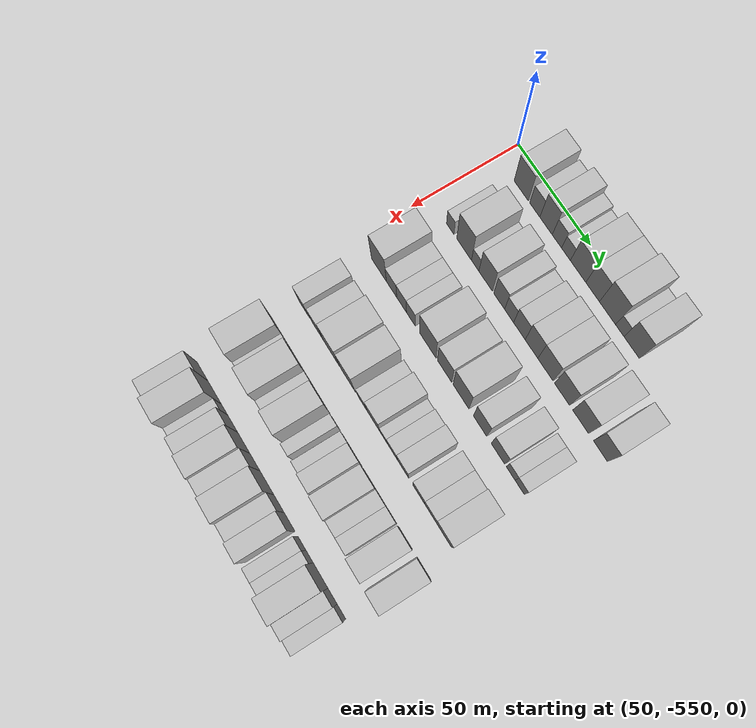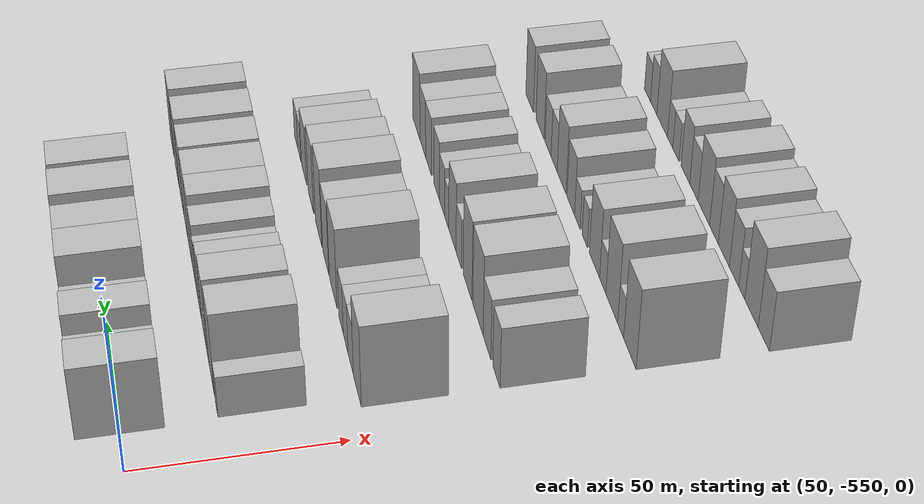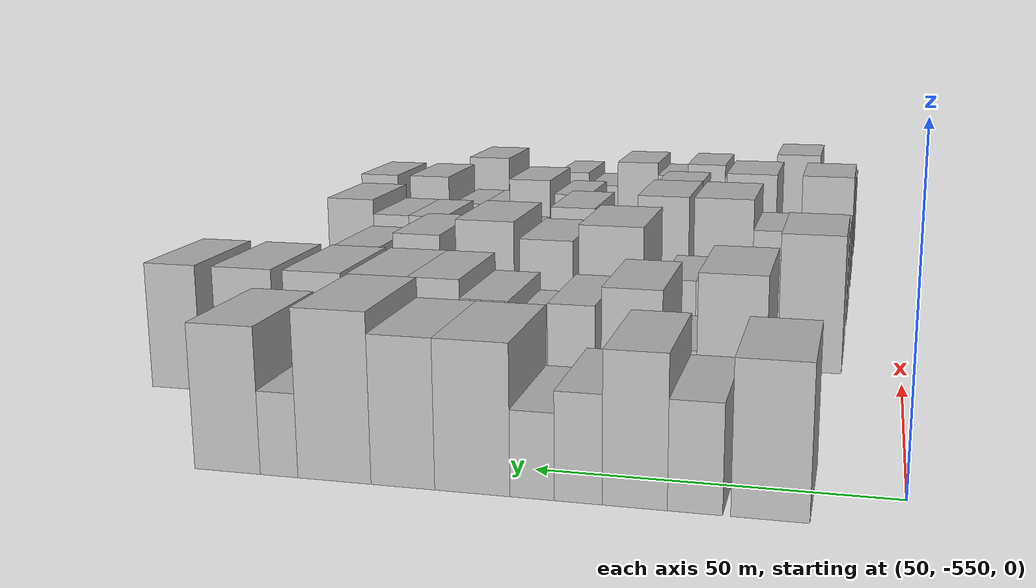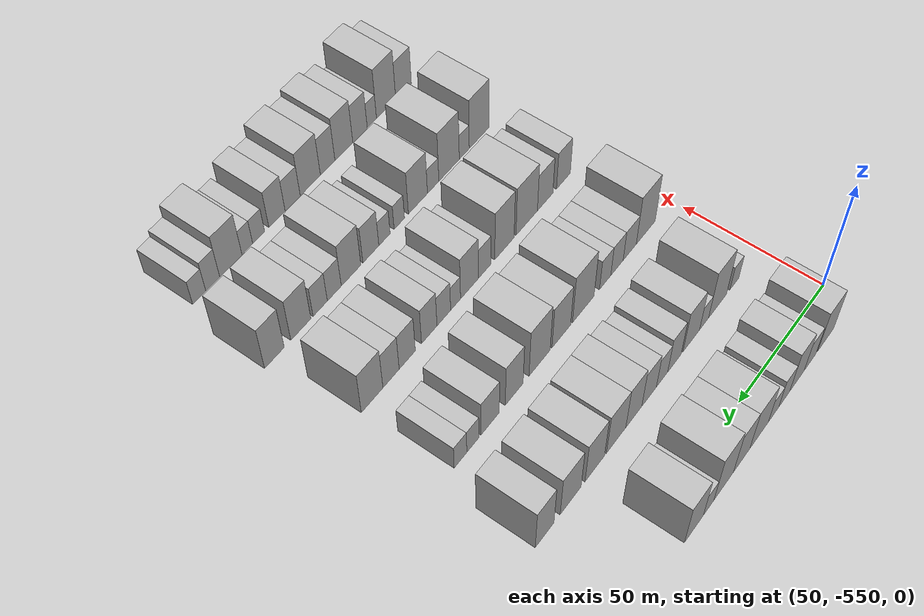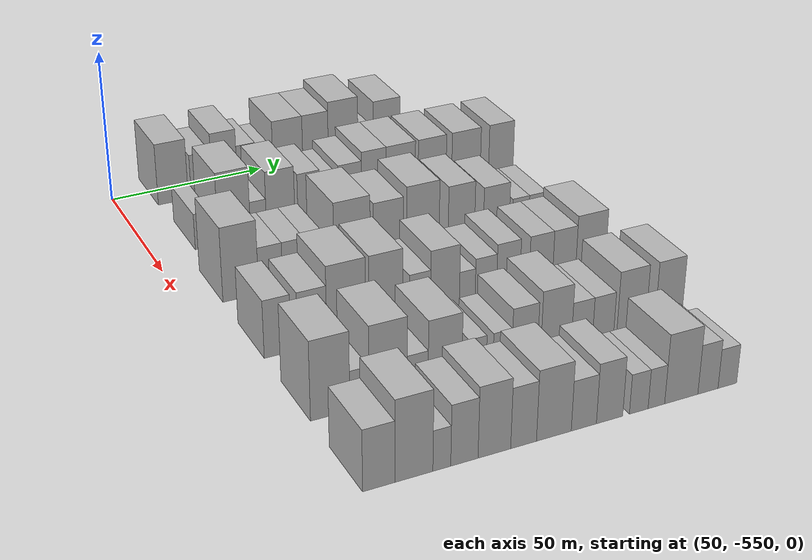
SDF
<sdf version="1.6">
 <world name="default">
  <model name="building_1">
   <static>1</static>
   <pose>50.0000 -533.0383 0 0.000000 0.000000 0.000000</pose>
   <link name="link">
    <pose>0 0 10.50 0 0 0</pose>
    <collision name="collision"><geometry><box><size>20.0000 9.9235 21.0000</size></box></geometry></collision>
    <visual name="visual">
     <cast_shadows>0</cast_shadows>
     <geometry><box><size>20.0000 9.9235 21.0000</size></box></geometry>
     <material>
      <script>
       <uri>model://HANNAS_wall/materials/scripts</uri>
       <uri>model://HANNAS_wall/materials/textures</uri>
       <name>vrc/HANNAS_wall</name>
      </script>
     </material>
    </visual>
   </link>
  </model>
  <model name="building_2">
   <static>1</static>
   <pose>50.0000 -523.5318 0 0.000000 0.000000 0.000000</pose>
   <link name="link">
    <pose>0 0 7.50 0 0 0</pose>
    <collision name="collision"><geometry><box><size>20.0000 7.0894 15.0000</size></box></geometry></collision>
    <visual name="visual">
     <cast_shadows>0</cast_shadows>
     <geometry><box><size>20.0000 7.0894 15.0000</size></box></geometry>
     <material>
      <script>
       <uri>model://HANNAS_wall/materials/scripts</uri>
       <uri>model://HANNAS_wall/materials/textures</uri>
       <name>vrc/HANNAS_wall</name>
      </script>
     </material>
    </visual>
   </link>
  </model>
  <model name="building_3">
   <static>1</static>
   <pose>50.0000 -515.7265 0 0.000000 0.000000 0.000000</pose>
   <link name="link">
    <pose>0 0 10.50 0 0 0</pose>
    <collision name="collision"><geometry><box><size>20.0000 8.5213 21.0000</size></box></geometry></collision>
    <visual name="visual">
     <cast_shadows>0</cast_shadows>
     <geometry><box><size>20.0000 8.5213 21.0000</size></box></geometry>
     <material>
      <script>
       <uri>model://HANNAS_wall/materials/scripts</uri>
       <uri>model://HANNAS_wall/materials/textures</uri>
       <name>vrc/HANNAS_wall</name>
      </script>
     </material>
    </visual>
   </link>
  </model>
  <model name="building_4">
   <static>1</static>
   <pose>50.0000 -508.2796 0 0.000000 0.000000 0.000000</pose>
   <link name="link">
    <pose>0 0 7.50 0 0 0</pose>
    <collision name="collision"><geometry><box><size>20.0000 6.3724 15.0000</size></box></geometry></collision>
    <visual name="visual">
     <cast_shadows>0</cast_shadows>
     <geometry><box><size>20.0000 6.3724 15.0000</size></box></geometry>
     <material>
      <script>
       <uri>model://HANNAS_wall/materials/scripts</uri>
       <uri>model://HANNAS_wall/materials/textures</uri>
       <name>vrc/HANNAS_wall</name>
      </script>
     </material>
    </visual>
   </link>
  </model>
  <model name="building_5">
   <static>1</static>
   <pose>50.0000 -502.1047 0 0.000000 0.000000 0.000000</pose>
   <link name="link">
    <pose>0 0 6.00 0 0 0</pose>
    <collision name="collision"><geometry><box><size>20.0000 5.9775 12.0000</size></box></geometry></collision>
    <visual name="visual">
     <cast_shadows>0</cast_shadows>
     <geometry><box><size>20.0000 5.9775 12.0000</size></box></geometry>
     <material>
      <script>
       <uri>model://HANNAS_wall/materials/scripts</uri>
       <uri>model://HANNAS_wall/materials/textures</uri>
       <name>vrc/HANNAS_wall</name>
      </script>
     </material>
    </visual>
   </link>
  </model>
  <model name="building_6">
   <static>1</static>
   <pose>50.0000 -493.9333 0 0.000000 0.000000 0.000000</pose>
   <link name="link">
    <pose>0 0 10.50 0 0 0</pose>
    <collision name="collision"><geometry><box><size>20.0000 10.3654 21.0000</size></box></geometry></collision>
    <visual name="visual">
     <cast_shadows>0</cast_shadows>
     <geometry><box><size>20.0000 10.3654 21.0000</size></box></geometry>
     <material>
      <script>
       <uri>model://HANNAS_wall/materials/scripts</uri>
       <uri>model://HANNAS_wall/materials/textures</uri>
       <name>vrc/HANNAS_wall</name>
      </script>
     </material>
    </visual>
   </link>
  </model>
  <model name="building_7">
   <static>1</static>
   <pose>50.0000 -484.2510 0 0.000000 0.000000 0.000000</pose>
   <link name="link">
    <pose>0 0 10.50 0 0 0</pose>
    <collision name="collision"><geometry><box><size>20.0000 8.9993 21.0000</size></box></geometry></collision>
    <visual name="visual">
     <cast_shadows>0</cast_shadows>
     <geometry><box><size>20.0000 8.9993 21.0000</size></box></geometry>
     <material>
      <script>
       <uri>model://HANNAS_wall/materials/scripts</uri>
       <uri>model://HANNAS_wall/materials/textures</uri>
       <name>vrc/HANNAS_wall</name>
      </script>
     </material>
    </visual>
   </link>
  </model>
  <model name="building_8">
   <static>1</static>
   <pose>50.0000 -474.4659 0 0.000000 0.000000 0.000000</pose>
   <link name="link">
    <pose>0 0 12.00 0 0 0</pose>
    <collision name="collision"><geometry><box><size>20.0000 10.5708 24.0000</size></box></geometry></collision>
    <visual name="visual">
     <cast_shadows>0</cast_shadows>
     <geometry><box><size>20.0000 10.5708 24.0000</size></box></geometry>
     <material>
      <script>
       <uri>model://HANNAS_wall/materials/scripts</uri>
       <uri>model://HANNAS_wall/materials/textures</uri>
       <name>vrc/HANNAS_wall</name>
      </script>
     </material>
    </visual>
   </link>
  </model>
  <model name="building_9">
   <static>1</static>
   <pose>50.0000 -466.4104 0 0.000000 0.000000 0.000000</pose>
   <link name="link">
    <pose>0 0 6.00 0 0 0</pose>
    <collision name="collision"><geometry><box><size>20.0000 5.5403 12.0000</size></box></geometry></collision>
    <visual name="visual">
     <cast_shadows>0</cast_shadows>
     <geometry><box><size>20.0000 5.5403 12.0000</size></box></geometry>
     <material>
      <script>
       <uri>model://HANNAS_wall/materials/scripts</uri>
       <uri>model://HANNAS_wall/materials/textures</uri>
       <name>vrc/HANNAS_wall</name>
      </script>
     </material>
    </visual>
   </link>
  </model>
  <model name="building_10">
   <static>1</static>
   <pose>50.0000 -458.7270 0 0.000000 0.000000 0.000000</pose>
   <link name="link">
    <pose>0 0 10.50 0 0 0</pose>
    <collision name="collision"><geometry><box><size>20.0000 9.8265 21.0000</size></box></geometry></collision>
    <visual name="visual">
     <cast_shadows>0</cast_shadows>
     <geometry><box><size>20.0000 9.8265 21.0000</size></box></geometry>
     <material>
      <script>
       <uri>model://HANNAS_wall/materials/scripts</uri>
       <uri>model://HANNAS_wall/materials/textures</uri>
       <name>vrc/HANNAS_wall</name>
      </script>
     </material>
    </visual>
   </link>
  </model>
  <model name="building_116">
   <static>1</static>
   <pose>82.0000 -534.3353 0 0.000000 0.000000 0.000000</pose>
   <link name="link">
    <pose>0 0 6.00 0 0 0</pose>
    <collision name="collision"><geometry><box><size>20.0000 5.3293 12.0000</size></box></geometry></collision>
    <visual name="visual">
     <cast_shadows>0</cast_shadows>
     <geometry><box><size>20.0000 5.3293 12.0000</size></box></geometry>
     <material>
      <script>
       <uri>model://HANNAS_wall/materials/scripts</uri>
       <uri>model://HANNAS_wall/materials/textures</uri>
       <name>vrc/HANNAS_wall</name>
      </script>
     </material>
    </visual>
   </link>
  </model>
  <model name="building_117">
   <static>1</static>
   <pose>82.0000 -524.4683 0 0.000000 0.000000 0.000000</pose>
   <link name="link">
    <pose>0 0 12.00 0 0 0</pose>
    <collision name="collision"><geometry><box><size>20.0000 10.4048 24.0000</size></box></geometry></collision>
    <visual name="visual">
     <cast_shadows>0</cast_shadows>
     <geometry><box><size>20.0000 10.4048 24.0000</size></box></geometry>
     <material>
      <script>
       <uri>model://HANNAS_wall/materials/scripts</uri>
       <uri>model://HANNAS_wall/materials/textures</uri>
       <name>vrc/HANNAS_wall</name>
      </script>
     </material>
    </visual>
   </link>
  </model>
  <model name="building_118">
   <static>1</static>
   <pose>82.0000 -516.6596 0 0.000000 0.000000 0.000000</pose>
   <link name="link">
    <pose>0 0 6.00 0 0 0</pose>
    <collision name="collision"><geometry><box><size>20.0000 5.2125 12.0000</size></box></geometry></collision>
    <visual name="visual">
     <cast_shadows>0</cast_shadows>
     <geometry><box><size>20.0000 5.2125 12.0000</size></box></geometry>
     <material>
      <script>
       <uri>model://HANNAS_wall/materials/scripts</uri>
       <uri>model://HANNAS_wall/materials/textures</uri>
       <name>vrc/HANNAS_wall</name>
      </script>
     </material>
    </visual>
   </link>
  </model>
  <model name="building_119">
   <static>1</static>
   <pose>82.0000 -509.3737 0 0.000000 0.000000 0.000000</pose>
   <link name="link">
    <pose>0 0 10.50 0 0 0</pose>
    <collision name="collision"><geometry><box><size>20.0000 9.3593 21.0000</size></box></geometry></collision>
    <visual name="visual">
     <cast_shadows>0</cast_shadows>
     <geometry><box><size>20.0000 9.3593 21.0000</size></box></geometry>
     <material>
      <script>
       <uri>model://HANNAS_wall/materials/scripts</uri>
       <uri>model://HANNAS_wall/materials/textures</uri>
       <name>vrc/HANNAS_wall</name>
      </script>
     </material>
    </visual>
   </link>
  </model>
  <model name="building_120">
   <static>1</static>
   <pose>82.0000 -499.9854 0 0.000000 0.000000 0.000000</pose>
   <link name="link">
    <pose>0 0 9.00 0 0 0</pose>
    <collision name="collision"><geometry><box><size>20.0000 7.4174 18.0000</size></box></geometry></collision>
    <visual name="visual">
     <cast_shadows>0</cast_shadows>
     <geometry><box><size>20.0000 7.4174 18.0000</size></box></geometry>
     <material>
      <script>
       <uri>model://HANNAS_wall/materials/scripts</uri>
       <uri>model://HANNAS_wall/materials/textures</uri>
       <name>vrc/HANNAS_wall</name>
      </script>
     </material>
    </visual>
   </link>
  </model>
  <model name="building_121">
   <static>1</static>
   <pose>82.0000 -493.2014 0 0.000000 0.000000 0.000000</pose>
   <link name="link">
    <pose>0 0 7.50 0 0 0</pose>
    <collision name="collision"><geometry><box><size>20.0000 6.1505 15.0000</size></box></geometry></collision>
    <visual name="visual">
     <cast_shadows>0</cast_shadows>
     <geometry><box><size>20.0000 6.1505 15.0000</size></box></geometry>
     <material>
      <script>
       <uri>model://HANNAS_wall/materials/scripts</uri>
       <uri>model://HANNAS_wall/materials/textures</uri>
       <name>vrc/HANNAS_wall</name>
      </script>
     </material>
    </visual>
   </link>
  </model>
  <model name="building_122">
   <static>1</static>
   <pose>82.0000 -486.2137 0 0.000000 0.000000 0.000000</pose>
   <link name="link">
    <pose>0 0 9.00 0 0 0</pose>
    <collision name="collision"><geometry><box><size>20.0000 7.8249 18.0000</size></box></geometry></collision>
    <visual name="visual">
     <cast_shadows>0</cast_shadows>
     <geometry><box><size>20.0000 7.8249 18.0000</size></box></geometry>
     <material>
      <script>
       <uri>model://HANNAS_wall/materials/scripts</uri>
       <uri>model://HANNAS_wall/materials/textures</uri>
       <name>vrc/HANNAS_wall</name>
      </script>
     </material>
    </visual>
   </link>
  </model>
  <model name="building_123">
   <static>1</static>
   <pose>82.0000 -478.0771 0 0.000000 0.000000 0.000000</pose>
   <link name="link">
    <pose>0 0 10.50 0 0 0</pose>
    <collision name="collision"><geometry><box><size>20.0000 8.4484 21.0000</size></box></geometry></collision>
    <visual name="visual">
     <cast_shadows>0</cast_shadows>
     <geometry><box><size>20.0000 8.4484 21.0000</size></box></geometry>
     <material>
      <script>
       <uri>model://HANNAS_wall/materials/scripts</uri>
       <uri>model://HANNAS_wall/materials/textures</uri>
       <name>vrc/HANNAS_wall</name>
      </script>
     </material>
    </visual>
   </link>
  </model>
  <model name="building_124">
   <static>1</static>
   <pose>82.0000 -468.8421 0 0.000000 0.000000 0.000000</pose>
   <link name="link">
    <pose>0 0 10.50 0 0 0</pose>
    <collision name="collision"><geometry><box><size>20.0000 10.0214 21.0000</size></box></geometry></collision>
    <visual name="visual">
     <cast_shadows>0</cast_shadows>
     <geometry><box><size>20.0000 10.0214 21.0000</size></box></geometry>
     <material>
      <script>
       <uri>model://HANNAS_wall/materials/scripts</uri>
       <uri>model://HANNAS_wall/materials/textures</uri>
       <name>vrc/HANNAS_wall</name>
      </script>
     </material>
    </visual>
   </link>
  </model>
  <model name="building_125">
   <static>1</static>
   <pose>82.0000 -457.9148 0 0.000000 0.000000 0.000000</pose>
   <link name="link">
    <pose>0 0 10.50 0 0 0</pose>
    <collision name="collision"><geometry><box><size>20.0000 9.8332 21.0000</size></box></geometry></collision>
    <visual name="visual">
     <cast_shadows>0</cast_shadows>
     <geometry><box><size>20.0000 9.8332 21.0000</size></box></geometry>
     <material>
      <script>
       <uri>model://HANNAS_wall/materials/scripts</uri>
       <uri>model://HANNAS_wall/materials/textures</uri>
       <name>vrc/HANNAS_wall</name>
      </script>
     </material>
    </visual>
   </link>
  </model>
  <model name="building_126">
   <static>1</static>
   <pose>82.0000 -445.8728 0 0.000000 0.000000 0.000000</pose>
   <link name="link">
    <pose>0 0 10.50 0 0 0</pose>
    <collision name="collision"><geometry><box><size>20.0000 10.2509 21.0000</size></box></geometry></collision>
    <visual name="visual">
     <cast_shadows>0</cast_shadows>
     <geometry><box><size>20.0000 10.2509 21.0000</size></box></geometry>
     <material>
      <script>
       <uri>model://HANNAS_wall/materials/scripts</uri>
       <uri>model://HANNAS_wall/materials/textures</uri>
       <name>vrc/HANNAS_wall</name>
      </script>
     </material>
    </visual>
   </link>
  </model>
  <model name="building_127">
   <static>1</static>
   <pose>82.0000 -433.2729 0 0.000000 0.000000 0.000000</pose>
   <link name="link">
    <pose>0 0 10.50 0 0 0</pose>
    <collision name="collision"><geometry><box><size>20.0000 8.9489 21.0000</size></box></geometry></collision>
    <visual name="visual">
     <cast_shadows>0</cast_shadows>
     <geometry><box><size>20.0000 8.9489 21.0000</size></box></geometry>
     <material>
      <script>
       <uri>model://HANNAS_wall/materials/scripts</uri>
       <uri>model://HANNAS_wall/materials/textures</uri>
       <name>vrc/HANNAS_wall</name>
      </script>
     </material>
    </visual>
   </link>
  </model>
  <model name="building_238">
   <static>1</static>
   <pose>114.0000 -534.5657 0 0.000000 0.000000 0.000000</pose>
   <link name="link">
    <pose>0 0 12.00 0 0 0</pose>
    <collision name="collision"><geometry><box><size>20.0000 10.8685 24.0000</size></box></geometry></collision>
    <visual name="visual">
     <cast_shadows>0</cast_shadows>
     <geometry><box><size>20.0000 10.8685 24.0000</size></box></geometry>
     <material>
      <script>
       <uri>model://HANNAS_wall/materials/scripts</uri>
       <uri>model://HANNAS_wall/materials/textures</uri>
       <name>vrc/HANNAS_wall</name>
      </script>
     </material>
    </visual>
   </link>
  </model>
  <model name="building_239">
   <static>1</static>
   <pose>114.0000 -525.4193 0 0.000000 0.000000 0.000000</pose>
   <link name="link">
    <pose>0 0 7.50 0 0 0</pose>
    <collision name="collision"><geometry><box><size>20.0000 7.4244 15.0000</size></box></geometry></collision>
    <visual name="visual">
     <cast_shadows>0</cast_shadows>
     <geometry><box><size>20.0000 7.4244 15.0000</size></box></geometry>
     <material>
      <script>
       <uri>model://HANNAS_wall/materials/scripts</uri>
       <uri>model://HANNAS_wall/materials/textures</uri>
       <name>vrc/HANNAS_wall</name>
      </script>
     </material>
    </visual>
   </link>
  </model>
  <model name="building_240">
   <static>1</static>
   <pose>114.0000 -518.2498 0 0.000000 0.000000 0.000000</pose>
   <link name="link">
    <pose>0 0 7.50 0 0 0</pose>
    <collision name="collision"><geometry><box><size>20.0000 6.9146 15.0000</size></box></geometry></collision>
    <visual name="visual">
     <cast_shadows>0</cast_shadows>
     <geometry><box><size>20.0000 6.9146 15.0000</size></box></geometry>
     <material>
      <script>
       <uri>model://HANNAS_wall/materials/scripts</uri>
       <uri>model://HANNAS_wall/materials/textures</uri>
       <name>vrc/HANNAS_wall</name>
      </script>
     </material>
    </visual>
   </link>
  </model>
  <model name="building_241">
   <static>1</static>
   <pose>114.0000 -511.6880 0 0.000000 0.000000 0.000000</pose>
   <link name="link">
    <pose>0 0 7.50 0 0 0</pose>
    <collision name="collision"><geometry><box><size>20.0000 6.2090 15.0000</size></box></geometry></collision>
    <visual name="visual">
     <cast_shadows>0</cast_shadows>
     <geometry><box><size>20.0000 6.2090 15.0000</size></box></geometry>
     <material>
      <script>
       <uri>model://HANNAS_wall/materials/scripts</uri>
       <uri>model://HANNAS_wall/materials/textures</uri>
       <name>vrc/HANNAS_wall</name>
      </script>
     </material>
    </visual>
   </link>
  </model>
  <model name="building_242">
   <static>1</static>
   <pose>114.0000 -499.7923 0 0.000000 0.000000 0.000000</pose>
   <link name="link">
    <pose>0 0 12.00 0 0 0</pose>
    <collision name="collision"><geometry><box><size>20.0000 11.5825 24.0000</size></box></geometry></collision>
    <visual name="visual">
     <cast_shadows>0</cast_shadows>
     <geometry><box><size>20.0000 11.5825 24.0000</size></box></geometry>
     <material>
      <script>
       <uri>model://HANNAS_wall/materials/scripts</uri>
       <uri>model://HANNAS_wall/materials/textures</uri>
       <name>vrc/HANNAS_wall</name>
      </script>
     </material>
    </visual>
   </link>
  </model>
  <model name="building_243">
   <static>1</static>
   <pose>114.0000 -488.1308 0 0.000000 0.000000 0.000000</pose>
   <link name="link">
    <pose>0 0 10.50 0 0 0</pose>
    <collision name="collision"><geometry><box><size>20.0000 9.7406 21.0000</size></box></geometry></collision>
    <visual name="visual">
     <cast_shadows>0</cast_shadows>
     <geometry><box><size>20.0000 9.7406 21.0000</size></box></geometry>
     <material>
      <script>
       <uri>model://HANNAS_wall/materials/scripts</uri>
       <uri>model://HANNAS_wall/materials/textures</uri>
       <name>vrc/HANNAS_wall</name>
      </script>
     </material>
    </visual>
   </link>
  </model>
  <model name="building_244">
   <static>1</static>
   <pose>114.0000 -476.8656 0 0.000000 0.000000 0.000000</pose>
   <link name="link">
    <pose>0 0 12.00 0 0 0</pose>
    <collision name="collision"><geometry><box><size>20.0000 10.7898 24.0000</size></box></geometry></collision>
    <visual name="visual">
     <cast_shadows>0</cast_shadows>
     <geometry><box><size>20.0000 10.7898 24.0000</size></box></geometry>
     <material>
      <script>
       <uri>model://HANNAS_wall/materials/scripts</uri>
       <uri>model://HANNAS_wall/materials/textures</uri>
       <name>vrc/HANNAS_wall</name>
      </script>
     </material>
    </visual>
   </link>
  </model>
  <model name="building_245">
   <static>1</static>
   <pose>114.0000 -464.0229 0 0.000000 0.000000 0.000000</pose>
   <link name="link">
    <pose>0 0 10.50 0 0 0</pose>
    <collision name="collision"><geometry><box><size>20.0000 8.8955 21.0000</size></box></geometry></collision>
    <visual name="visual">
     <cast_shadows>0</cast_shadows>
     <geometry><box><size>20.0000 8.8955 21.0000</size></box></geometry>
     <material>
      <script>
       <uri>model://HANNAS_wall/materials/scripts</uri>
       <uri>model://HANNAS_wall/materials/textures</uri>
       <name>vrc/HANNAS_wall</name>
      </script>
     </material>
    </visual>
   </link>
  </model>
  <model name="building_246">
   <static>1</static>
   <pose>114.0000 -452.1378 0 0.000000 0.000000 0.000000</pose>
   <link name="link">
    <pose>0 0 9.00 0 0 0</pose>
    <collision name="collision"><geometry><box><size>20.0000 8.8747 18.0000</size></box></geometry></collision>
    <visual name="visual">
     <cast_shadows>0</cast_shadows>
     <geometry><box><size>20.0000 8.8747 18.0000</size></box></geometry>
     <material>
      <script>
       <uri>model://HANNAS_wall/materials/scripts</uri>
       <uri>model://HANNAS_wall/materials/textures</uri>
       <name>vrc/HANNAS_wall</name>
      </script>
     </material>
    </visual>
   </link>
  </model>
  <model name="building_247">
   <static>1</static>
   <pose>114.0000 -443.8161 0 0.000000 0.000000 0.000000</pose>
   <link name="link">
    <pose>0 0 6.00 0 0 0</pose>
    <collision name="collision"><geometry><box><size>20.0000 5.7686 12.0000</size></box></geometry></collision>
    <visual name="visual">
     <cast_shadows>0</cast_shadows>
     <geometry><box><size>20.0000 5.7686 12.0000</size></box></geometry>
     <material>
      <script>
       <uri>model://HANNAS_wall/materials/scripts</uri>
       <uri>model://HANNAS_wall/materials/textures</uri>
       <name>vrc/HANNAS_wall</name>
      </script>
     </material>
    </visual>
   </link>
  </model>
  <model name="building_248">
   <static>1</static>
   <pose>114.0000 -437.9347 0 0.000000 0.000000 0.000000</pose>
   <link name="link">
    <pose>0 0 6.00 0 0 0</pose>
    <collision name="collision"><geometry><box><size>20.0000 5.9942 12.0000</size></box></geometry></collision>
    <visual name="visual">
     <cast_shadows>0</cast_shadows>
     <geometry><box><size>20.0000 5.9942 12.0000</size></box></geometry>
     <material>
      <script>
       <uri>model://HANNAS_wall/materials/scripts</uri>
       <uri>model://HANNAS_wall/materials/textures</uri>
       <name>vrc/HANNAS_wall</name>
      </script>
     </material>
    </visual>
   </link>
  </model>
  <model name="building_353">
   <static>1</static>
   <pose>146.0000 -536.1102 0 0.000000 0.000000 0.000000</pose>
   <link name="link">
    <pose>0 0 9.00 0 0 0</pose>
    <collision name="collision"><geometry><box><size>20.0000 7.7796 18.0000</size></box></geometry></collision>
    <visual name="visual">
     <cast_shadows>0</cast_shadows>
     <geometry><box><size>20.0000 7.7796 18.0000</size></box></geometry>
     <material>
      <script>
       <uri>model://HANNAS_wall/materials/scripts</uri>
       <uri>model://HANNAS_wall/materials/textures</uri>
       <name>vrc/HANNAS_wall</name>
      </script>
     </material>
    </visual>
   </link>
  </model>
  <model name="building_354">
   <static>1</static>
   <pose>146.0000 -525.9420 0 0.000000 0.000000 0.000000</pose>
   <link name="link">
    <pose>0 0 9.00 0 0 0</pose>
    <collision name="collision"><geometry><box><size>20.0000 8.5569 18.0000</size></box></geometry></collision>
    <visual name="visual">
     <cast_shadows>0</cast_shadows>
     <geometry><box><size>20.0000 8.5569 18.0000</size></box></geometry>
     <material>
      <script>
       <uri>model://HANNAS_wall/materials/scripts</uri>
       <uri>model://HANNAS_wall/materials/textures</uri>
       <name>vrc/HANNAS_wall</name>
      </script>
     </material>
    </visual>
   </link>
  </model>
  <model name="building_355">
   <static>1</static>
   <pose>146.0000 -515.8517 0 0.000000 0.000000 0.000000</pose>
   <link name="link">
    <pose>0 0 12.00 0 0 0</pose>
    <collision name="collision"><geometry><box><size>20.0000 11.6236 24.0000</size></box></geometry></collision>
    <visual name="visual">
     <cast_shadows>0</cast_shadows>
     <geometry><box><size>20.0000 11.6236 24.0000</size></box></geometry>
     <material>
      <script>
       <uri>model://HANNAS_wall/materials/scripts</uri>
       <uri>model://HANNAS_wall/materials/textures</uri>
       <name>vrc/HANNAS_wall</name>
      </script>
     </material>
    </visual>
   </link>
  </model>
  <model name="building_356">
   <static>1</static>
   <pose>146.0000 -503.9166 0 0.000000 0.000000 0.000000</pose>
   <link name="link">
    <pose>0 0 12.00 0 0 0</pose>
    <collision name="collision"><geometry><box><size>20.0000 10.2467 24.0000</size></box></geometry></collision>
    <visual name="visual">
     <cast_shadows>0</cast_shadows>
     <geometry><box><size>20.0000 10.2467 24.0000</size></box></geometry>
     <material>
      <script>
       <uri>model://HANNAS_wall/materials/scripts</uri>
       <uri>model://HANNAS_wall/materials/textures</uri>
       <name>vrc/HANNAS_wall</name>
      </script>
     </material>
    </visual>
   </link>
  </model>
  <model name="building_357">
   <static>1</static>
   <pose>146.0000 -493.5033 0 0.000000 0.000000 0.000000</pose>
   <link name="link">
    <pose>0 0 7.50 0 0 0</pose>
    <collision name="collision"><geometry><box><size>20.0000 6.5798 15.0000</size></box></geometry></collision>
    <visual name="visual">
     <cast_shadows>0</cast_shadows>
     <geometry><box><size>20.0000 6.5798 15.0000</size></box></geometry>
     <material>
      <script>
       <uri>model://HANNAS_wall/materials/scripts</uri>
       <uri>model://HANNAS_wall/materials/textures</uri>
       <name>vrc/HANNAS_wall</name>
      </script>
     </material>
    </visual>
   </link>
  </model>
  <model name="building_358">
   <static>1</static>
   <pose>146.0000 -485.6820 0 0.000000 0.000000 0.000000</pose>
   <link name="link">
    <pose>0 0 10.50 0 0 0</pose>
    <collision name="collision"><geometry><box><size>20.0000 9.0630 21.0000</size></box></geometry></collision>
    <visual name="visual">
     <cast_shadows>0</cast_shadows>
     <geometry><box><size>20.0000 9.0630 21.0000</size></box></geometry>
     <material>
      <script>
       <uri>model://HANNAS_wall/materials/scripts</uri>
       <uri>model://HANNAS_wall/materials/textures</uri>
       <name>vrc/HANNAS_wall</name>
      </script>
     </material>
    </visual>
   </link>
  </model>
  <model name="building_359">
   <static>1</static>
   <pose>146.0000 -478.6538 0 0.000000 0.000000 0.000000</pose>
   <link name="link">
    <pose>0 0 6.00 0 0 0</pose>
    <collision name="collision"><geometry><box><size>20.0000 4.9933 12.0000</size></box></geometry></collision>
    <visual name="visual">
     <cast_shadows>0</cast_shadows>
     <geometry><box><size>20.0000 4.9933 12.0000</size></box></geometry>
     <material>
      <script>
       <uri>model://HANNAS_wall/materials/scripts</uri>
       <uri>model://HANNAS_wall/materials/textures</uri>
       <name>vrc/HANNAS_wall</name>
      </script>
     </material>
    </visual>
   </link>
  </model>
  <model name="building_360">
   <static>1</static>
   <pose>146.0000 -472.7554 0 0.000000 0.000000 0.000000</pose>
   <link name="link">
    <pose>0 0 7.50 0 0 0</pose>
    <collision name="collision"><geometry><box><size>20.0000 6.8037 15.0000</size></box></geometry></collision>
    <visual name="visual">
     <cast_shadows>0</cast_shadows>
     <geometry><box><size>20.0000 6.8037 15.0000</size></box></geometry>
     <material>
      <script>
       <uri>model://HANNAS_wall/materials/scripts</uri>
       <uri>model://HANNAS_wall/materials/textures</uri>
       <name>vrc/HANNAS_wall</name>
      </script>
     </material>
    </visual>
   </link>
  </model>
  <model name="building_361">
   <static>1</static>
   <pose>146.0000 -465.5709 0 0.000000 0.000000 0.000000</pose>
   <link name="link">
    <pose>0 0 9.00 0 0 0</pose>
    <collision name="collision"><geometry><box><size>20.0000 7.5652 18.0000</size></box></geometry></collision>
    <visual name="visual">
     <cast_shadows>0</cast_shadows>
     <geometry><box><size>20.0000 7.5652 18.0000</size></box></geometry>
     <material>
      <script>
       <uri>model://HANNAS_wall/materials/scripts</uri>
       <uri>model://HANNAS_wall/materials/textures</uri>
       <name>vrc/HANNAS_wall</name>
      </script>
     </material>
    </visual>
   </link>
  </model>
  <model name="building_362">
   <static>1</static>
   <pose>146.0000 -454.9089 0 0.000000 0.000000 0.000000</pose>
   <link name="link">
    <pose>0 0 9.00 0 0 0</pose>
    <collision name="collision"><geometry><box><size>20.0000 7.7589 18.0000</size></box></geometry></collision>
    <visual name="visual">
     <cast_shadows>0</cast_shadows>
     <geometry><box><size>20.0000 7.7589 18.0000</size></box></geometry>
     <material>
      <script>
       <uri>model://HANNAS_wall/materials/scripts</uri>
       <uri>model://HANNAS_wall/materials/textures</uri>
       <name>vrc/HANNAS_wall</name>
      </script>
     </material>
    </visual>
   </link>
  </model>
  <model name="building_363">
   <static>1</static>
   <pose>146.0000 -447.1987 0 0.000000 0.000000 0.000000</pose>
   <link name="link">
    <pose>0 0 9.00 0 0 0</pose>
    <collision name="collision"><geometry><box><size>20.0000 7.6613 18.0000</size></box></geometry></collision>
    <visual name="visual">
     <cast_shadows>0</cast_shadows>
     <geometry><box><size>20.0000 7.6613 18.0000</size></box></geometry>
     <material>
      <script>
       <uri>model://HANNAS_wall/materials/scripts</uri>
       <uri>model://HANNAS_wall/materials/textures</uri>
       <name>vrc/HANNAS_wall</name>
      </script>
     </material>
    </visual>
   </link>
  </model>
  <model name="building_364">
   <static>1</static>
   <pose>146.0000 -438.3567 0 0.000000 0.000000 0.000000</pose>
   <link name="link">
    <pose>0 0 10.50 0 0 0</pose>
    <collision name="collision"><geometry><box><size>20.0000 10.0227 21.0000</size></box></geometry></collision>
    <visual name="visual">
     <cast_shadows>0</cast_shadows>
     <geometry><box><size>20.0000 10.0227 21.0000</size></box></geometry>
     <material>
      <script>
       <uri>model://HANNAS_wall/materials/scripts</uri>
       <uri>model://HANNAS_wall/materials/textures</uri>
       <name>vrc/HANNAS_wall</name>
      </script>
     </material>
    </visual>
   </link>
  </model>
  <model name="building_466">
   <static>1</static>
   <pose>178.0000 -534.5332 0 0.000000 0.000000 0.000000</pose>
   <link name="link">
    <pose>0 0 12.00 0 0 0</pose>
    <collision name="collision"><geometry><box><size>20.0000 10.9336 24.0000</size></box></geometry></collision>
    <visual name="visual">
     <cast_shadows>0</cast_shadows>
     <geometry><box><size>20.0000 10.9336 24.0000</size></box></geometry>
     <material>
      <script>
       <uri>model://HANNAS_wall/materials/scripts</uri>
       <uri>model://HANNAS_wall/materials/textures</uri>
       <name>vrc/HANNAS_wall</name>
      </script>
     </material>
    </visual>
   </link>
  </model>
  <model name="building_467">
   <static>1</static>
   <pose>178.0000 -526.3695 0 0.000000 0.000000 0.000000</pose>
   <link name="link">
    <pose>0 0 6.00 0 0 0</pose>
    <collision name="collision"><geometry><box><size>20.0000 5.3939 12.0000</size></box></geometry></collision>
    <visual name="visual">
     <cast_shadows>0</cast_shadows>
     <geometry><box><size>20.0000 5.3939 12.0000</size></box></geometry>
     <material>
      <script>
       <uri>model://HANNAS_wall/materials/scripts</uri>
       <uri>model://HANNAS_wall/materials/textures</uri>
       <name>vrc/HANNAS_wall</name>
      </script>
     </material>
    </visual>
   </link>
  </model>
  <model name="building_468">
   <static>1</static>
   <pose>178.0000 -518.2132 0 0.000000 0.000000 0.000000</pose>
   <link name="link">
    <pose>0 0 12.00 0 0 0</pose>
    <collision name="collision"><geometry><box><size>20.0000 10.9185 24.0000</size></box></geometry></collision>
    <visual name="visual">
     <cast_shadows>0</cast_shadows>
     <geometry><box><size>20.0000 10.9185 24.0000</size></box></geometry>
     <material>
      <script>
       <uri>model://HANNAS_wall/materials/scripts</uri>
       <uri>model://HANNAS_wall/materials/textures</uri>
       <name>vrc/HANNAS_wall</name>
      </script>
     </material>
    </visual>
   </link>
  </model>
  <model name="building_469">
   <static>1</static>
   <pose>178.0000 -509.7616 0 0.000000 0.000000 0.000000</pose>
   <link name="link">
    <pose>0 0 6.00 0 0 0</pose>
    <collision name="collision"><geometry><box><size>20.0000 5.9848 12.0000</size></box></geometry></collision>
    <visual name="visual">
     <cast_shadows>0</cast_shadows>
     <geometry><box><size>20.0000 5.9848 12.0000</size></box></geometry>
     <material>
      <script>
       <uri>model://HANNAS_wall/materials/scripts</uri>
       <uri>model://HANNAS_wall/materials/textures</uri>
       <name>vrc/HANNAS_wall</name>
      </script>
     </material>
    </visual>
   </link>
  </model>
  <model name="building_470">
   <static>1</static>
   <pose>178.0000 -501.8412 0 0.000000 0.000000 0.000000</pose>
   <link name="link">
    <pose>0 0 10.50 0 0 0</pose>
    <collision name="collision"><geometry><box><size>20.0000 9.8561 21.0000</size></box></geometry></collision>
    <visual name="visual">
     <cast_shadows>0</cast_shadows>
     <geometry><box><size>20.0000 9.8561 21.0000</size></box></geometry>
     <material>
      <script>
       <uri>model://HANNAS_wall/materials/scripts</uri>
       <uri>model://HANNAS_wall/materials/textures</uri>
       <name>vrc/HANNAS_wall</name>
      </script>
     </material>
    </visual>
   </link>
  </model>
  <model name="building_471">
   <static>1</static>
   <pose>178.0000 -492.2762 0 0.000000 0.000000 0.000000</pose>
   <link name="link">
    <pose>0 0 6.00 0 0 0</pose>
    <collision name="collision"><geometry><box><size>20.0000 5.2739 12.0000</size></box></geometry></collision>
    <visual name="visual">
     <cast_shadows>0</cast_shadows>
     <geometry><box><size>20.0000 5.2739 12.0000</size></box></geometry>
     <material>
      <script>
       <uri>model://HANNAS_wall/materials/scripts</uri>
       <uri>model://HANNAS_wall/materials/textures</uri>
       <name>vrc/HANNAS_wall</name>
      </script>
     </material>
    </visual>
   </link>
  </model>
  <model name="building_472">
   <static>1</static>
   <pose>178.0000 -484.8168 0 0.000000 0.000000 0.000000</pose>
   <link name="link">
    <pose>0 0 6.00 0 0 0</pose>
    <collision name="collision"><geometry><box><size>20.0000 5.6448 12.0000</size></box></geometry></collision>
    <visual name="visual">
     <cast_shadows>0</cast_shadows>
     <geometry><box><size>20.0000 5.6448 12.0000</size></box></geometry>
     <material>
      <script>
       <uri>model://HANNAS_wall/materials/scripts</uri>
       <uri>model://HANNAS_wall/materials/textures</uri>
       <name>vrc/HANNAS_wall</name>
      </script>
     </material>
    </visual>
   </link>
  </model>
  <model name="building_473">
   <static>1</static>
   <pose>178.0000 -478.0580 0 0.000000 0.000000 0.000000</pose>
   <link name="link">
    <pose>0 0 9.00 0 0 0</pose>
    <collision name="collision"><geometry><box><size>20.0000 7.8729 18.0000</size></box></geometry></collision>
    <visual name="visual">
     <cast_shadows>0</cast_shadows>
     <geometry><box><size>20.0000 7.8729 18.0000</size></box></geometry>
     <material>
      <script>
       <uri>model://HANNAS_wall/materials/scripts</uri>
       <uri>model://HANNAS_wall/materials/textures</uri>
       <name>vrc/HANNAS_wall</name>
      </script>
     </material>
    </visual>
   </link>
  </model>
  <model name="building_474">
   <static>1</static>
   <pose>178.0000 -468.3758 0 0.000000 0.000000 0.000000</pose>
   <link name="link">
    <pose>0 0 10.50 0 0 0</pose>
    <collision name="collision"><geometry><box><size>20.0000 9.4913 21.0000</size></box></geometry></collision>
    <visual name="visual">
     <cast_shadows>0</cast_shadows>
     <geometry><box><size>20.0000 9.4913 21.0000</size></box></geometry>
     <material>
      <script>
       <uri>model://HANNAS_wall/materials/scripts</uri>
       <uri>model://HANNAS_wall/materials/textures</uri>
       <name>vrc/HANNAS_wall</name>
      </script>
     </material>
    </visual>
   </link>
  </model>
  <model name="building_475">
   <static>1</static>
   <pose>178.0000 -460.3116 0 0.000000 0.000000 0.000000</pose>
   <link name="link">
    <pose>0 0 7.50 0 0 0</pose>
    <collision name="collision"><geometry><box><size>20.0000 6.6371 15.0000</size></box></geometry></collision>
    <visual name="visual">
     <cast_shadows>0</cast_shadows>
     <geometry><box><size>20.0000 6.6371 15.0000</size></box></geometry>
     <material>
      <script>
       <uri>model://HANNAS_wall/materials/scripts</uri>
       <uri>model://HANNAS_wall/materials/textures</uri>
       <name>vrc/HANNAS_wall</name>
      </script>
     </material>
    </visual>
   </link>
  </model>
  <model name="building_476">
   <static>1</static>
   <pose>178.0000 -453.6234 0 0.000000 0.000000 0.000000</pose>
   <link name="link">
    <pose>0 0 7.50 0 0 0</pose>
    <collision name="collision"><geometry><box><size>20.0000 6.7394 15.0000</size></box></geometry></collision>
    <visual name="visual">
     <cast_shadows>0</cast_shadows>
     <geometry><box><size>20.0000 6.7394 15.0000</size></box></geometry>
     <material>
      <script>
       <uri>model://HANNAS_wall/materials/scripts</uri>
       <uri>model://HANNAS_wall/materials/textures</uri>
       <name>vrc/HANNAS_wall</name>
      </script>
     </material>
    </visual>
   </link>
  </model>
  <model name="building_477">
   <static>1</static>
   <pose>178.0000 -444.6080 0 0.000000 0.000000 0.000000</pose>
   <link name="link">
    <pose>0 0 10.50 0 0 0</pose>
    <collision name="collision"><geometry><box><size>20.0000 9.2913 21.0000</size></box></geometry></collision>
    <visual name="visual">
     <cast_shadows>0</cast_shadows>
     <geometry><box><size>20.0000 9.2913 21.0000</size></box></geometry>
     <material>
      <script>
       <uri>model://HANNAS_wall/materials/scripts</uri>
       <uri>model://HANNAS_wall/materials/textures</uri>
       <name>vrc/HANNAS_wall</name>
      </script>
     </material>
    </visual>
   </link>
  </model>
  <model name="building_478">
   <static>1</static>
   <pose>178.0000 -432.5379 0 0.000000 0.000000 0.000000</pose>
   <link name="link">
    <pose>0 0 10.50 0 0 0</pose>
    <collision name="collision"><geometry><box><size>20.0000 8.8489 21.0000</size></box></geometry></collision>
    <visual name="visual">
     <cast_shadows>0</cast_shadows>
     <geometry><box><size>20.0000 8.8489 21.0000</size></box></geometry>
     <material>
      <script>
       <uri>model://HANNAS_wall/materials/scripts</uri>
       <uri>model://HANNAS_wall/materials/textures</uri>
       <name>vrc/HANNAS_wall</name>
      </script>
     </material>
    </visual>
   </link>
  </model>
  <model name="building_592">
   <static>1</static>
   <pose>210.0000 -535.7472 0 0.000000 0.000000 0.000000</pose>
   <link name="link">
    <pose>0 0 9.00 0 0 0</pose>
    <collision name="collision"><geometry><box><size>20.0000 8.5057 18.0000</size></box></geometry></collision>
    <visual name="visual">
     <cast_shadows>0</cast_shadows>
     <geometry><box><size>20.0000 8.5057 18.0000</size></box></geometry>
     <material>
      <script>
       <uri>model://HANNAS_wall/materials/scripts</uri>
       <uri>model://HANNAS_wall/materials/textures</uri>
       <name>vrc/HANNAS_wall</name>
      </script>
     </material>
    </visual>
   </link>
  </model>
  <model name="building_593">
   <static>1</static>
   <pose>210.0000 -526.3821 0 0.000000 0.000000 0.000000</pose>
   <link name="link">
    <pose>0 0 12.00 0 0 0</pose>
    <collision name="collision"><geometry><box><size>20.0000 10.2244 24.0000</size></box></geometry></collision>
    <visual name="visual">
     <cast_shadows>0</cast_shadows>
     <geometry><box><size>20.0000 10.2244 24.0000</size></box></geometry>
     <material>
      <script>
       <uri>model://HANNAS_wall/materials/scripts</uri>
       <uri>model://HANNAS_wall/materials/textures</uri>
       <name>vrc/HANNAS_wall</name>
      </script>
     </material>
    </visual>
   </link>
  </model>
  <model name="building_594">
   <static>1</static>
   <pose>210.0000 -518.8409 0 0.000000 0.000000 0.000000</pose>
   <link name="link">
    <pose>0 0 6.00 0 0 0</pose>
    <collision name="collision"><geometry><box><size>20.0000 4.8581 12.0000</size></box></geometry></collision>
    <visual name="visual">
     <cast_shadows>0</cast_shadows>
     <geometry><box><size>20.0000 4.8581 12.0000</size></box></geometry>
     <material>
      <script>
       <uri>model://HANNAS_wall/materials/scripts</uri>
       <uri>model://HANNAS_wall/materials/textures</uri>
       <name>vrc/HANNAS_wall</name>
      </script>
     </material>
    </visual>
   </link>
  </model>
  <model name="building_595">
   <static>1</static>
   <pose>210.0000 -512.6590 0 0.000000 0.000000 0.000000</pose>
   <link name="link">
    <pose>0 0 9.00 0 0 0</pose>
    <collision name="collision"><geometry><box><size>20.0000 7.5057 18.0000</size></box></geometry></collision>
    <visual name="visual">
     <cast_shadows>0</cast_shadows>
     <geometry><box><size>20.0000 7.5057 18.0000</size></box></geometry>
     <material>
      <script>
       <uri>model://HANNAS_wall/materials/scripts</uri>
       <uri>model://HANNAS_wall/materials/textures</uri>
       <name>vrc/HANNAS_wall</name>
      </script>
     </material>
    </visual>
   </link>
  </model>
  <model name="building_596">
   <static>1</static>
   <pose>210.0000 -504.3448 0 0.000000 0.000000 0.000000</pose>
   <link name="link">
    <pose>0 0 10.50 0 0 0</pose>
    <collision name="collision"><geometry><box><size>20.0000 9.1228 21.0000</size></box></geometry></collision>
    <visual name="visual">
     <cast_shadows>0</cast_shadows>
     <geometry><box><size>20.0000 9.1228 21.0000</size></box></geometry>
     <material>
      <script>
       <uri>model://HANNAS_wall/materials/scripts</uri>
       <uri>model://HANNAS_wall/materials/textures</uri>
       <name>vrc/HANNAS_wall</name>
      </script>
     </material>
    </visual>
   </link>
  </model>
  <model name="building_597">
   <static>1</static>
   <pose>210.0000 -496.1254 0 0.000000 0.000000 0.000000</pose>
   <link name="link">
    <pose>0 0 9.00 0 0 0</pose>
    <collision name="collision"><geometry><box><size>20.0000 7.3159 18.0000</size></box></geometry></collision>
    <visual name="visual">
     <cast_shadows>0</cast_shadows>
     <geometry><box><size>20.0000 7.3159 18.0000</size></box></geometry>
     <material>
      <script>
       <uri>model://HANNAS_wall/materials/scripts</uri>
       <uri>model://HANNAS_wall/materials/textures</uri>
       <name>vrc/HANNAS_wall</name>
      </script>
     </material>
    </visual>
   </link>
  </model>
  <model name="building_598">
   <static>1</static>
   <pose>210.0000 -487.4610 0 0.000000 0.000000 0.000000</pose>
   <link name="link">
    <pose>0 0 10.50 0 0 0</pose>
    <collision name="collision"><geometry><box><size>20.0000 10.0129 21.0000</size></box></geometry></collision>
    <visual name="visual">
     <cast_shadows>0</cast_shadows>
     <geometry><box><size>20.0000 10.0129 21.0000</size></box></geometry>
     <material>
      <script>
       <uri>model://HANNAS_wall/materials/scripts</uri>
       <uri>model://HANNAS_wall/materials/textures</uri>
       <name>vrc/HANNAS_wall</name>
      </script>
     </material>
    </visual>
   </link>
  </model>
  <model name="building_599">
   <static>1</static>
   <pose>210.0000 -478.7742 0 0.000000 0.000000 0.000000</pose>
   <link name="link">
    <pose>0 0 7.50 0 0 0</pose>
    <collision name="collision"><geometry><box><size>20.0000 7.3607 15.0000</size></box></geometry></collision>
    <visual name="visual">
     <cast_shadows>0</cast_shadows>
     <geometry><box><size>20.0000 7.3607 15.0000</size></box></geometry>
     <material>
      <script>
       <uri>model://HANNAS_wall/materials/scripts</uri>
       <uri>model://HANNAS_wall/materials/textures</uri>
       <name>vrc/HANNAS_wall</name>
      </script>
     </material>
    </visual>
   </link>
  </model>
  <model name="building_600">
   <static>1</static>
   <pose>210.0000 -471.1943 0 0.000000 0.000000 0.000000</pose>
   <link name="link">
    <pose>0 0 9.00 0 0 0</pose>
    <collision name="collision"><geometry><box><size>20.0000 7.7993 18.0000</size></box></geometry></collision>
    <visual name="visual">
     <cast_shadows>0</cast_shadows>
     <geometry><box><size>20.0000 7.7993 18.0000</size></box></geometry>
     <material>
      <script>
       <uri>model://HANNAS_wall/materials/scripts</uri>
       <uri>model://HANNAS_wall/materials/textures</uri>
       <name>vrc/HANNAS_wall</name>
      </script>
     </material>
    </visual>
   </link>
  </model>
  <model name="building_601">
   <static>1</static>
   <pose>210.0000 -462.4803 0 0.000000 0.000000 0.000000</pose>
   <link name="link">
    <pose>0 0 6.00 0 0 0</pose>
    <collision name="collision"><geometry><box><size>20.0000 5.6287 12.0000</size></box></geometry></collision>
    <visual name="visual">
     <cast_shadows>0</cast_shadows>
     <geometry><box><size>20.0000 5.6287 12.0000</size></box></geometry>
     <material>
      <script>
       <uri>model://HANNAS_wall/materials/scripts</uri>
       <uri>model://HANNAS_wall/materials/textures</uri>
       <name>vrc/HANNAS_wall</name>
      </script>
     </material>
    </visual>
   </link>
  </model>
  <model name="building_602">
   <static>1</static>
   <pose>210.0000 -457.1488 0 0.000000 0.000000 0.000000</pose>
   <link name="link">
    <pose>0 0 6.00 0 0 0</pose>
    <collision name="collision"><geometry><box><size>20.0000 5.0342 12.0000</size></box></geometry></collision>
    <visual name="visual">
     <cast_shadows>0</cast_shadows>
     <geometry><box><size>20.0000 5.0342 12.0000</size></box></geometry>
     <material>
      <script>
       <uri>model://HANNAS_wall/materials/scripts</uri>
       <uri>model://HANNAS_wall/materials/textures</uri>
       <name>vrc/HANNAS_wall</name>
      </script>
     </material>
    </visual>
   </link>
  </model>
  <model name="building_603">
   <static>1</static>
   <pose>210.0000 -449.5283 0 0.000000 0.000000 0.000000</pose>
   <link name="link">
    <pose>0 0 10.50 0 0 0</pose>
    <collision name="collision"><geometry><box><size>20.0000 10.2070 21.0000</size></box></geometry></collision>
    <visual name="visual">
     <cast_shadows>0</cast_shadows>
     <geometry><box><size>20.0000 10.2070 21.0000</size></box></geometry>
     <material>
      <script>
       <uri>model://HANNAS_wall/materials/scripts</uri>
       <uri>model://HANNAS_wall/materials/textures</uri>
       <name>vrc/HANNAS_wall</name>
      </script>
     </material>
    </visual>
   </link>
  </model>
  <model name="building_604">
   <static>1</static>
   <pose>210.0000 -441.2793 0 0.000000 0.000000 0.000000</pose>
   <link name="link">
    <pose>0 0 7.50 0 0 0</pose>
    <collision name="collision"><geometry><box><size>20.0000 6.2910 15.0000</size></box></geometry></collision>
    <visual name="visual">
     <cast_shadows>0</cast_shadows>
     <geometry><box><size>20.0000 6.2910 15.0000</size></box></geometry>
     <material>
      <script>
       <uri>model://HANNAS_wall/materials/scripts</uri>
       <uri>model://HANNAS_wall/materials/textures</uri>
       <name>vrc/HANNAS_wall</name>
      </script>
     </material>
    </visual>
   </link>
  </model>
  <model name="building_605">
   <static>1</static>
   <pose>210.0000 -435.1907 0 0.000000 0.000000 0.000000</pose>
   <link name="link">
    <pose>0 0 6.00 0 0 0</pose>
    <collision name="collision"><geometry><box><size>20.0000 5.8861 12.0000</size></box></geometry></collision>
    <visual name="visual">
     <cast_shadows>0</cast_shadows>
     <geometry><box><size>20.0000 5.8861 12.0000</size></box></geometry>
     <material>
      <script>
       <uri>model://HANNAS_wall/materials/scripts</uri>
       <uri>model://HANNAS_wall/materials/textures</uri>
       <name>vrc/HANNAS_wall</name>
      </script>
     </material>
    </visual>
   </link>
  </model>
 </world>
</sdf>
